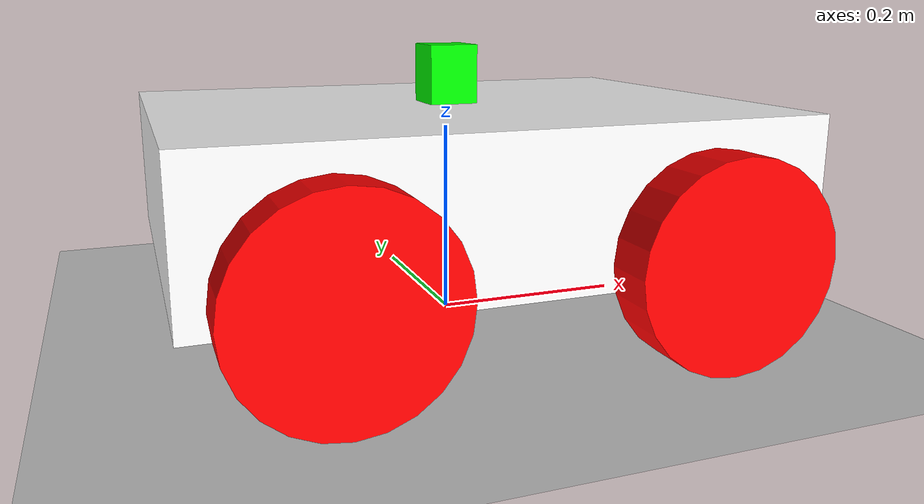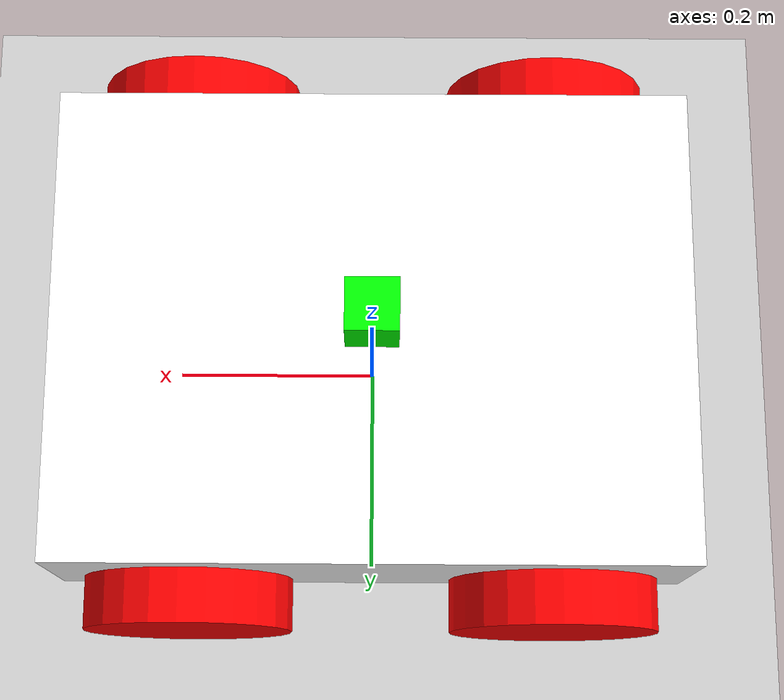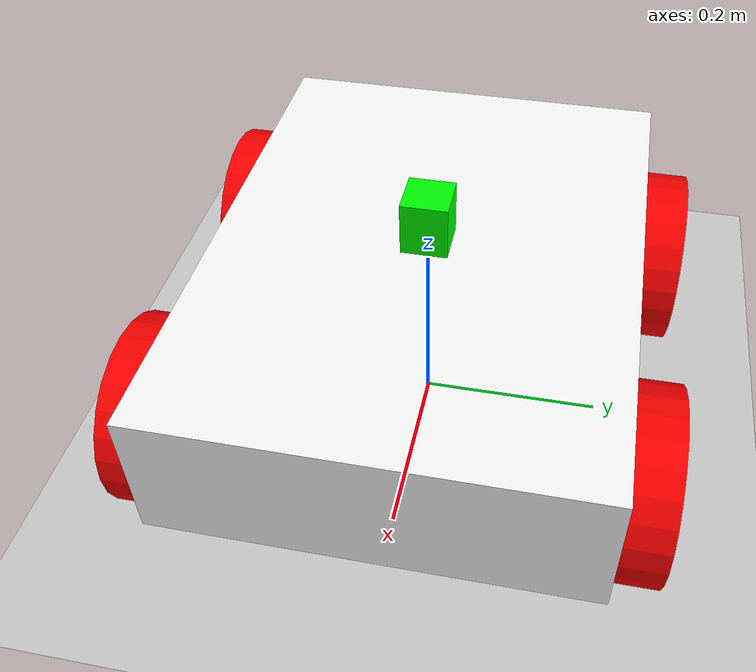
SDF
<?xml version="1.0" ?>
<sdf version="1.9">
    <world name="car_world">
        <physics name="1ms" type="ignored">
            <max_step_size>0.001</max_step_size>
            <real_time_factor>1.0</real_time_factor>
        </physics>
        <plugin
            filename="gz-sim-physics-system"
            name="gz::sim::systems::Physics">
        </plugin>
        <plugin
            filename="gz-sim-user-commands-system"
            name="gz::sim::systems::UserCommands">
        </plugin>
        <plugin
            filename="gz-sim-scene-broadcaster-system"
            name="gz::sim::systems::SceneBroadcaster">
        </plugin>

        <plugin filename="gz-sim-imu-system"
                name="gz::sim::systems::Imu">
        </plugin>
         <plugin
            filename="gz-sim-contact-system"
            name="gz::sim::systems::Contact">
        </plugin>
        <plugin
            filename="gz-sim-sensors-system"
            name="gz::sim::systems::Sensors">
            <render_engine>ogre2</render_engine>
        </plugin>

        <light type="directional" name="sun">
            <cast_shadows>true</cast_shadows>
            <pose>0 0 10 0 0 0</pose>
            <diffuse>0.8 0.8 0.8 1</diffuse>
            <specular>0.2 0.2 0.2 1</specular>
            <attenuation>
                <range>1000</range>
                <constant>0.9</constant>
                <linear>0.01</linear>
                <quadratic>0.001</quadratic>
            </attenuation>
            <direction>-0.5 0.1 -0.9</direction>
        </light>

        <model name="ground_plane">
            <static>true</static>
            <link name="link">
                <collision name="collision">
                <geometry>
                    <plane>
                    <normal>0 0 1</normal>
                    </plane>
                </geometry>
                </collision>
                <visual name="visual">
                <geometry>
                    <plane>
                    <normal>0 0 1</normal>
                    <size>100 100</size>
                    </plane>
                </geometry>
                <material>
                    <ambient>0.8 0.8 0.8 1</ambient>
                    <diffuse>0.8 0.8 0.8 1</diffuse>
                    <specular>0.8 0.8 0.8 1</specular>
                </material>
                </visual>
            </link>
        </model>

        <model name='vehicle_white' canonical_link='chassis'>
            <pose relative_to='world'>0 0 0 0 0 0</pose>

            <link name='chassis'>
                <pose relative_to='__model__'>0.0 0 0.15 0 0 0</pose>
                <inertial> <!--inertial properties of the link mass, inertia matix-->
                    <mass>1.14395</mass>
                    <inertia>
                        <ixx>0.095329</ixx>
                        <ixy>0</ixy>
                        <ixz>0</ixz>
                        <iyy>0.381317</iyy>
                        <iyz>0</iyz>
                        <izz>0.476646</izz>
                    </inertia>
                </inertial>
                <visual name='visual'>
                    <geometry>
                        <box>
                            <size>0.6 0.45 0.15</size>
                        </box>
                    </geometry>
                    <material>
                        <ambient>1 1 1 1</ambient>
                        <diffuse>1 1 1 1</diffuse>
                        <specular>1 1 1 1</specular>
                    </material>
                </visual>
                <collision name='collision'>
                    <geometry>
                        <box>
                            <size>0.6 0.45 0.15</size>
                        </box>
                    </geometry>
                </collision>
                <!-- imu_sensor -->
                <sensor name="imu_sensor" type="imu">
                    <always_on>1</always_on>
                    <update_rate>1</update_rate>
                    <visualize>true</visualize>
                    <topic>imu</topic>
                </sensor>
            </link>
            <!-- rear_left_wheel -->
            <link name='rear_left_wheel'>
                <pose relative_to="chassis">-0.175 0.25 -0.05 -1.5707 0 0</pose>
                <inertial>
                    <mass>1</mass>
                    <inertia>
                        <ixx>0.043333</ixx>
                        <ixy>0</ixy>
                        <ixz>0</ixz>
                        <iyy>0.043333</iyy>
                        <iyz>0</iyz>
                        <izz>0.08</izz>
                    </inertia>
                </inertial>
                    <visual name='visual'>
                    <geometry>
                        <cylinder>
                            <radius>0.1</radius>
                            <length>0.05</length>
                        </cylinder>
                    </geometry>
                    <material>
                        <ambient>1.0 0.0 0.0 1</ambient>
                        <diffuse>1.0 0.0 0.0 1</diffuse>
                        <specular>1.0 0.0 0.0 1</specular>
                    </material>
                </visual>
                <collision name='collision'>
                    <geometry>
                        <cylinder>
                            <radius>0.1</radius>
                            <length>0.05</length>
                        </cylinder>
                    </geometry>
                </collision>
            </link>
            <!--rear_right_wheel-->
            <link name='rear_right_wheel'>
                <pose relative_to="chassis">-0.175 -0.25 -0.05 -1.5707 0 0</pose> <!--angles are in radian-->
                <inertial>
                    <mass>1</mass>
                    <inertia>
                        <ixx>0.043333</ixx>
                        <ixy>0</ixy>
                        <ixz>0</ixz>
                        <iyy>0.043333</iyy>
                        <iyz>0</iyz>
                        <izz>0.08</izz>
                    </inertia>
                </inertial>
                <visual name='visual'>
                    <geometry>
                        <cylinder>
                            <radius>0.1</radius>
                            <length>0.05</length>
                        </cylinder>
                    </geometry>
                    <material>
                        <ambient>1.0 0.0 0.0 1</ambient>
                        <diffuse>1.0 0.0 0.0 1</diffuse>
                        <specular>1.0 0.0 0.0 1</specular>
                    </material>
                </visual>
                <collision name='collision'>
                    <geometry>
                        <cylinder>
                            <radius>0.1</radius>
                            <length>0.05</length>
                        </cylinder>
                    </geometry>
                </collision>
            </link>
            <!-- front_left_wheel -->
            <link name='front_left_wheel'>
                <pose relative_to="chassis">0.175 0.25 -0.05 -1.5707 0 0</pose>
                <inertial>
                    <mass>1</mass>
                    <inertia>
                        <ixx>0.043333</ixx>
                        <ixy>0</ixy>
                        <ixz>0</ixz>
                        <iyy>0.043333</iyy>
                        <iyz>0</iyz>
                        <izz>0.08</izz>
                    </inertia>
                </inertial>
                    <visual name='visual'>
                    <geometry>
                        <cylinder>
                            <radius>0.1</radius>
                            <length>0.05</length>
                        </cylinder>
                    </geometry>
                    <material>
                        <ambient>1.0 0.0 0.0 1</ambient>
                        <diffuse>1.0 0.0 0.0 1</diffuse>
                        <specular>1.0 0.0 0.0 1</specular>
                    </material>
                </visual>
                <collision name='collision'>
                    <geometry>
                        <cylinder>
                            <radius>0.1</radius>
                            <length>0.05</length>
                        </cylinder>
                    </geometry>
                </collision>
            </link>
            <!--front_right_wheel -->
            <link name='front_right_wheel'>
                <pose relative_to="chassis">0.175 -0.25 -0.05 -1.5707 0 0</pose> <!--angles are in radian-->
                <inertial>
                    <mass>1</mass>
                    <inertia>
                        <ixx>0.043333</ixx>
                        <ixy>0</ixy>
                        <ixz>0</ixz>
                        <iyy>0.043333</iyy>
                        <iyz>0</iyz>
                        <izz>0.08</izz>
                    </inertia>
                </inertial>
                <visual name='visual'>
                    <geometry>
                        <cylinder>
                            <radius>0.1</radius>
                            <length>0.05</length>
                        </cylinder>
                    </geometry>
                    <material>
                        <ambient>1.0 0.0 0.0 1</ambient>
                        <diffuse>1.0 0.0 0.0 1</diffuse>
                        <specular>1.0 0.0 0.0 1</specular>
                    </material>
                </visual>
                <collision name='collision'>
                    <geometry>
                        <cylinder>
                            <radius>0.1</radius>
                            <length>0.05</length>
                        </cylinder>
                    </geometry>
                </collision>
            </link>
            <link name='lidar'>
                <pose>0 0 0.25 0 0 0</pose>
                <inertial>
                    <mass>0.1</mass>
                    <inertia>
                        <ixx>0.016</ixx>
                        <ixy>0</ixy>
                        <ixz>0</ixz>
                        <iyy>0.016</iyy>
                        <iyz>0</iyz>
                        <izz>0.016</izz>
                    </inertia>
                </inertial>
                <visual name='visual'>
                    <geometry>
                        <box>
                            <size>0.050 0.050 0.07</size>
                        </box>
                    </geometry>
                    <material>
                        <ambient>0.0 1 0.0 1</ambient>
                        <diffuse>0.0 1 0.0 1</diffuse>
                        <specular>0.0 1 0.0 1</specular>
                    </material>
                </visual>
                <collision name='collision'>
                    <geometry>
                        <box>
                            <size>0.050 0.050 0.07</size>
                        </box>
                    </geometry>
                </collision>
                <sensor name='gpu_lidar' type='gpu_lidar'>
                    <pose relative_to='lidar'>0 0 0 0 0 0</pose>
                    <topic>scan</topic>
                    <update_rate>10</update_rate>
                    <ray>
                        <scan>
                            <horizontal>
                                <samples>640</samples>
                                <resolution>1</resolution>
                                <min_angle>-1.57</min_angle>
                                <max_angle>1.57</max_angle>
                            </horizontal>
                            <vertical>
                                <samples>1</samples>
                                <resolution>0.01</resolution>
                                <min_angle>0</min_angle>
                                <max_angle>0</max_angle>
                            </vertical>
                        </scan>
                        <range>
                            <min>0.08</min>
                            <max>10.0</max>
                            <resolution>0.01</resolution>
                        </range>
                    </ray>
                    <always_on>1</always_on>
                    <visualize>true</visualize>
                </sensor>
            </link>
            <joint name='joint_lidar' type='fixed'>
                <parent>chassis</parent>
                <child>lidar</child>
            </joint>

            <joint name='front_left_wheel_joint' type='revolute'>
                <pose relative_to='front_left_wheel'/>
                <parent>chassis</parent>
                <child>front_left_wheel</child>
                <axis>
                    <xyz expressed_in='__model__'>0 1 0</xyz> <!--can be defined as any frame or even arbitrary frames-->
                    <limit>
                        <lower>-1.79769e+308</lower>    <!--negative infinity-->
                        <upper>1.79769e+308</upper>     <!--positive infinity-->
                    </limit>
                </axis>
            </joint>
            <joint name='front_right_wheel_joint' type='revolute'>
                <pose relative_to='front_right_wheel'/>
                <parent>chassis</parent>
                <child>front_right_wheel</child>
                <axis>
                    <xyz expressed_in='__model__'>0 1 0</xyz>
                    <limit>
                        <lower>-1.79769e+308</lower>    <!--negative infinity-->
                        <upper>1.79769e+308</upper>     <!--positive infinity-->
                    </limit>
                </axis>
            </joint>

            <joint name='rear_left_wheel_joint' type='revolute'>
                <pose relative_to='rear_left_wheel'/>
                <parent>chassis</parent>
                <child>rear_left_wheel</child>
                <axis>
                    <xyz expressed_in='__model__'>0 1 0</xyz> <!--can be defined as any frame or even arbitrary frames-->
                    <limit>
                        <lower>-1.79769e+308</lower>    <!--negative infinity-->
                        <upper>1.79769e+308</upper>     <!--positive infinity-->
                    </limit>
                </axis>
            </joint>

            <joint name='rear_right_wheel_joint' type='revolute'>
                <pose relative_to='rear_right_wheel'/>
                <parent>chassis</parent>
                <child>rear_right_wheel</child>
                <axis>
                    <xyz expressed_in='__model__'>0 1 0</xyz>
                    <limit>
                        <lower>-1.79769e+308</lower>    <!--negative infinity-->
                        <upper>1.79769e+308</upper>     <!--positive infinity-->
                    </limit>
                </axis>
            </joint>

            <plugin
                filename="gz-sim-diff-drive-system"
                name="gz::sim::systems::DiffDrive">
                <num_wheel_pairs>2</num_wheel_pairs>
                <left_joint>rear_left_wheel_joint</left_joint>
                <right_joint>rear_right_wheel_joint</right_joint>
                <left_joint>front_left_wheel_joint</left_joint>
                <right_joint>front_right_wheel_joint</right_joint>
                <wheel_separation>1.2</wheel_separation>
                <wheel_radius>0.4</wheel_radius>
                <odom_publish_frequency>1</odom_publish_frequency>
                <topic>cmd_vel</topic>
            </plugin>

            <plugin
                filename="gz-sim-joint-state-publisher-system"
                name="gz::sim::systems::JointStatePublisher">
            </plugin>

            <plugin
                filename="gz-sim-pose-publisher-system"
                name="gz::sim::systems::PosePublisher">
                <publish_link_pose>true</publish_link_pose>
                <use_pose_vector_msg>true</use_pose_vector_msg>
                <static_publisher>true</static_publisher>
                <static_update_frequency>1</static_update_frequency>
            </plugin>

            <plugin
                filename="gz-sim-odometry-publisher-system"
                name="gz::sim::systems::OdometryPublisher">
                <odom_frame>vehicle_white/odom</odom_frame>
                <robot_base_frame>vehicle_white</robot_base_frame>
            </plugin>
        </model>

        <!-- Moving Forward-->
        <plugin filename="gz-sim-triggered-publisher-system"
                name="gz::sim::systems::TriggeredPublisher">
            <input type="gz.msgs.Int32" topic="/keyboard/keypress">
                <match field="data">16777235</match><!-- Upwards Arrow ⬆ -->
            </input>
            <output type="gz.msgs.Twist" topic="/cmd_vel">
                linear: {x: 0.5}, angular: {z: 0.0}
            </output>
        </plugin>
        <!-- Moving Backward-->
        <plugin filename="gz-sim-triggered-publisher-system"
                name="gz::sim::systems::TriggeredPublisher">
            <input type="gz.msgs.Int32" topic="/keyboard/keypress">
                <match field="data">16777237</match><!--Downwards Arrow -->
            </input>
            <output type="gz.msgs.Twist" topic="/cmd_vel">
                linear: {x: -0.5}, angular: {z: 0.0}
            </output>
        </plugin>
        <!-- Moving Right-->
        <plugin filename="gz-sim-triggered-publisher-system"
                name="gz::sim::systems::TriggeredPublisher">
            <input type="gz.msgs.Int32" topic="/keyboard/keypress">
                <match field="data">16777236</match><!--  →	Rightwards Arrow -->
            </input>
            <output type="gz.msgs.Twist" topic="/cmd_vel">
                linear: {x: 0.0}, angular: {z: -0.5}
            </output>
        </plugin>
        <!-- Moving Left-->
        <plugin filename="gz-sim-triggered-publisher-system"
                name="gz::sim::systems::TriggeredPublisher">
            <input type="gz.msgs.Int32" topic="/keyboard/keypress">
                <match field="data">16777234</match><!--  ←	Leftwards Arrow -->
            </input>
            <output type="gz.msgs.Twist" topic="/cmd_vel">
                linear: {x: 0.0}, angular: {z: 0.5}
            </output>
        </plugin>

        <!-- Stop-->
        <plugin filename="gz-sim-triggered-publisher-system"
                name="gz::sim::systems::TriggeredPublisher">
            <input type="gz.msgs.Int32" topic="/keyboard/keypress">
                <match field="data">75</match>
            </input>
            <output type="gz.msgs.Twist" topic="/cmd_vel">
                linear: {x: 0.0}, angular: {z: 0.0}
            </output>
        </plugin>

    </world>
</sdf>
